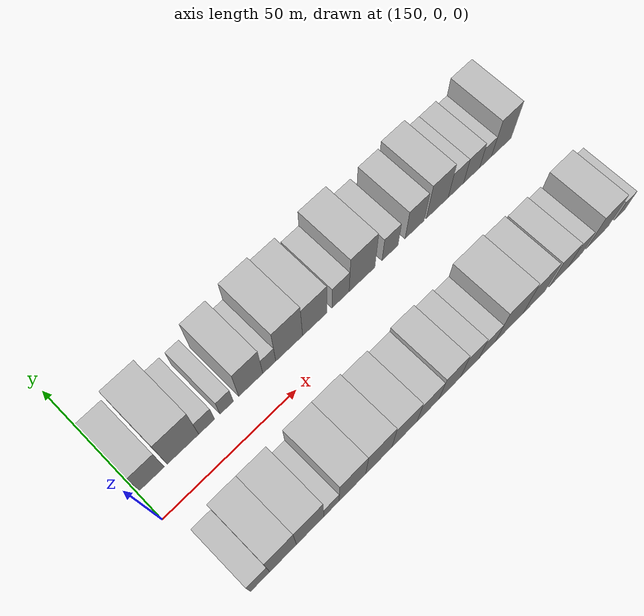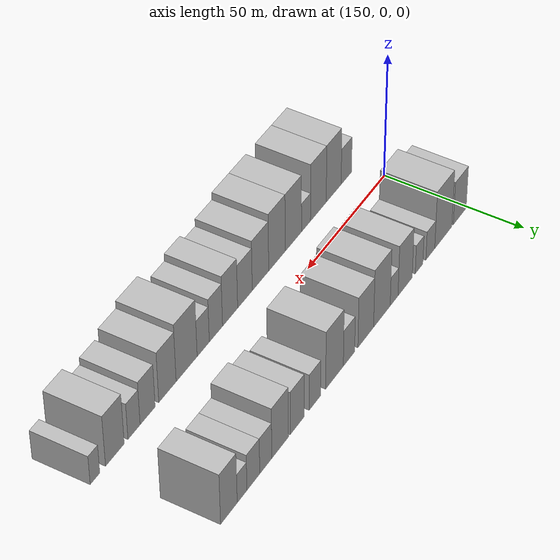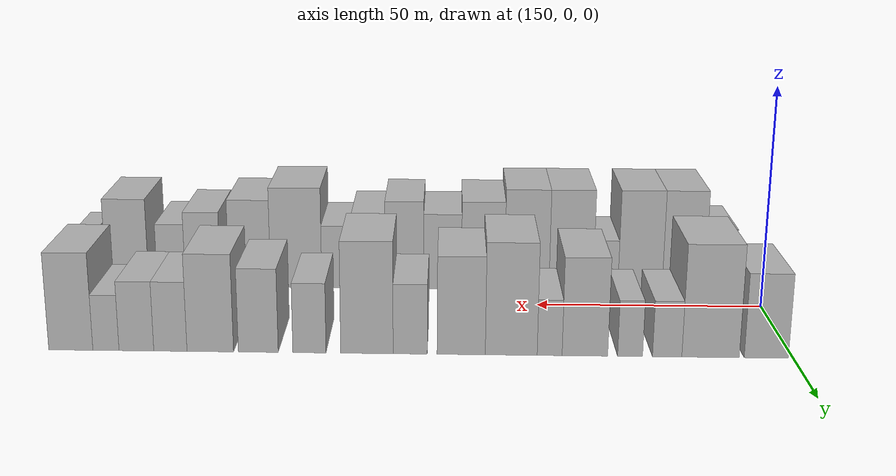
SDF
<sdf version="1.6">
 <world name="default">
  <model name="building_17">
   <static>1</static>
   <pose>155.3812 20.0000 0 0.000000 0.000000 1.570796</pose>
   <link name="link">
    <pose>0 0 9.00 0 0 0</pose>
    <collision name="collision"><geometry><box><size>20.0000 8.8951 18.0000</size></box></geometry></collision>
    <visual name="visual">
     <cast_shadows>0</cast_shadows>
     <geometry><box><size>20.0000 8.8951 18.0000</size></box></geometry>
     <material>
      <script>
       <uri>model://HANNAS_wall/materials/scripts</uri>
       <uri>model://HANNAS_wall/materials/textures</uri>
       <name>vrc/HANNAS_wall</name>
      </script>
     </material>
    </visual>
   </link>
  </model>
  <model name="building_18">
   <static>1</static>
   <pose>166.6293 20.0000 0 0.000000 0.000000 1.570796</pose>
   <link name="link">
    <pose>0 0 12.00 0 0 0</pose>
    <collision name="collision"><geometry><box><size>20.0000 11.6011 24.0000</size></box></geometry></collision>
    <visual name="visual">
     <cast_shadows>0</cast_shadows>
     <geometry><box><size>20.0000 11.6011 24.0000</size></box></geometry>
     <material>
      <script>
       <uri>model://HANNAS_wall/materials/scripts</uri>
       <uri>model://HANNAS_wall/materials/textures</uri>
       <name>vrc/HANNAS_wall</name>
      </script>
     </material>
    </visual>
   </link>
  </model>
  <model name="building_19">
   <static>1</static>
   <pose>175.3966 20.0000 0 0.000000 0.000000 1.570796</pose>
   <link name="link">
    <pose>0 0 6.00 0 0 0</pose>
    <collision name="collision"><geometry><box><size>20.0000 5.9334 12.0000</size></box></geometry></collision>
    <visual name="visual">
     <cast_shadows>0</cast_shadows>
     <geometry><box><size>20.0000 5.9334 12.0000</size></box></geometry>
     <material>
      <script>
       <uri>model://HANNAS_wall/materials/scripts</uri>
       <uri>model://HANNAS_wall/materials/textures</uri>
       <name>vrc/HANNAS_wall</name>
      </script>
     </material>
    </visual>
   </link>
  </model>
  <model name="building_20">
   <static>1</static>
   <pose>182.8956 20.0000 0 0.000000 0.000000 1.570796</pose>
   <link name="link">
    <pose>0 0 6.00 0 0 0</pose>
    <collision name="collision"><geometry><box><size>20.0000 5.0646 12.0000</size></box></geometry></collision>
    <visual name="visual">
     <cast_shadows>0</cast_shadows>
     <geometry><box><size>20.0000 5.0646 12.0000</size></box></geometry>
     <material>
      <script>
       <uri>model://HANNAS_wall/materials/scripts</uri>
       <uri>model://HANNAS_wall/materials/textures</uri>
       <name>vrc/HANNAS_wall</name>
      </script>
     </material>
    </visual>
   </link>
  </model>
  <model name="building_21">
   <static>1</static>
   <pose>192.0635 20.0000 0 0.000000 0.000000 1.570796</pose>
   <link name="link">
    <pose>0 0 10.50 0 0 0</pose>
    <collision name="collision"><geometry><box><size>20.0000 9.2713 21.0000</size></box></geometry></collision>
    <visual name="visual">
     <cast_shadows>0</cast_shadows>
     <geometry><box><size>20.0000 9.2713 21.0000</size></box></geometry>
     <material>
      <script>
       <uri>model://HANNAS_wall/materials/scripts</uri>
       <uri>model://HANNAS_wall/materials/textures</uri>
       <name>vrc/HANNAS_wall</name>
      </script>
     </material>
    </visual>
   </link>
  </model>
  <model name="building_22">
   <static>1</static>
   <pose>199.2287 20.0000 0 0.000000 0.000000 1.570796</pose>
   <link name="link">
    <pose>0 0 6.00 0 0 0</pose>
    <collision name="collision"><geometry><box><size>20.0000 5.0590 12.0000</size></box></geometry></collision>
    <visual name="visual">
     <cast_shadows>0</cast_shadows>
     <geometry><box><size>20.0000 5.0590 12.0000</size></box></geometry>
     <material>
      <script>
       <uri>model://HANNAS_wall/materials/scripts</uri>
       <uri>model://HANNAS_wall/materials/textures</uri>
       <name>vrc/HANNAS_wall</name>
      </script>
     </material>
    </visual>
   </link>
  </model>
  <model name="building_23">
   <static>1</static>
   <pose>207.0410 20.0000 0 0.000000 0.000000 1.570796</pose>
   <link name="link">
    <pose>0 0 12.00 0 0 0</pose>
    <collision name="collision"><geometry><box><size>20.0000 10.5656 24.0000</size></box></geometry></collision>
    <visual name="visual">
     <cast_shadows>0</cast_shadows>
     <geometry><box><size>20.0000 10.5656 24.0000</size></box></geometry>
     <material>
      <script>
       <uri>model://HANNAS_wall/materials/scripts</uri>
       <uri>model://HANNAS_wall/materials/textures</uri>
       <name>vrc/HANNAS_wall</name>
      </script>
     </material>
    </visual>
   </link>
  </model>
  <model name="building_24">
   <static>1</static>
   <pose>217.2430 20.0000 0 0.000000 0.000000 1.570796</pose>
   <link name="link">
    <pose>0 0 10.50 0 0 0</pose>
    <collision name="collision"><geometry><box><size>20.0000 9.8382 21.0000</size></box></geometry></collision>
    <visual name="visual">
     <cast_shadows>0</cast_shadows>
     <geometry><box><size>20.0000 9.8382 21.0000</size></box></geometry>
     <material>
      <script>
       <uri>model://HANNAS_wall/materials/scripts</uri>
       <uri>model://HANNAS_wall/materials/textures</uri>
       <name>vrc/HANNAS_wall</name>
      </script>
     </material>
    </visual>
   </link>
  </model>
  <model name="building_25">
   <static>1</static>
   <pose>227.6580 20.0000 0 0.000000 0.000000 1.570796</pose>
   <link name="link">
    <pose>0 0 7.50 0 0 0</pose>
    <collision name="collision"><geometry><box><size>20.0000 6.9918 15.0000</size></box></geometry></collision>
    <visual name="visual">
     <cast_shadows>0</cast_shadows>
     <geometry><box><size>20.0000 6.9918 15.0000</size></box></geometry>
     <material>
      <script>
       <uri>model://HANNAS_wall/materials/scripts</uri>
       <uri>model://HANNAS_wall/materials/textures</uri>
       <name>vrc/HANNAS_wall</name>
      </script>
     </material>
    </visual>
   </link>
  </model>
  <model name="building_26">
   <static>1</static>
   <pose>236.5223 20.0000 0 0.000000 0.000000 1.570796</pose>
   <link name="link">
    <pose>0 0 12.00 0 0 0</pose>
    <collision name="collision"><geometry><box><size>20.0000 10.7368 24.0000</size></box></geometry></collision>
    <visual name="visual">
     <cast_shadows>0</cast_shadows>
     <geometry><box><size>20.0000 10.7368 24.0000</size></box></geometry>
     <material>
      <script>
       <uri>model://HANNAS_wall/materials/scripts</uri>
       <uri>model://HANNAS_wall/materials/textures</uri>
       <name>vrc/HANNAS_wall</name>
      </script>
     </material>
    </visual>
   </link>
  </model>
  <model name="building_27">
   <static>1</static>
   <pose>248.2994 20.0000 0 0.000000 0.000000 1.570796</pose>
   <link name="link">
    <pose>0 0 7.50 0 0 0</pose>
    <collision name="collision"><geometry><box><size>20.0000 6.8175 15.0000</size></box></geometry></collision>
    <visual name="visual">
     <cast_shadows>0</cast_shadows>
     <geometry><box><size>20.0000 6.8175 15.0000</size></box></geometry>
     <material>
      <script>
       <uri>model://HANNAS_wall/materials/scripts</uri>
       <uri>model://HANNAS_wall/materials/textures</uri>
       <name>vrc/HANNAS_wall</name>
      </script>
     </material>
    </visual>
   </link>
  </model>
  <model name="building_28">
   <static>1</static>
   <pose>258.8060 20.0000 0 0.000000 0.000000 1.570796</pose>
   <link name="link">
    <pose>0 0 9.00 0 0 0</pose>
    <collision name="collision"><geometry><box><size>20.0000 8.1957 18.0000</size></box></geometry></collision>
    <visual name="visual">
     <cast_shadows>0</cast_shadows>
     <geometry><box><size>20.0000 8.1957 18.0000</size></box></geometry>
     <material>
      <script>
       <uri>model://HANNAS_wall/materials/scripts</uri>
       <uri>model://HANNAS_wall/materials/textures</uri>
       <name>vrc/HANNAS_wall</name>
      </script>
     </material>
    </visual>
   </link>
  </model>
  <model name="building_29">
   <static>1</static>
   <pose>268.7011 20.0000 0 0.000000 0.000000 1.570796</pose>
   <link name="link">
    <pose>0 0 10.50 0 0 0</pose>
    <collision name="collision"><geometry><box><size>20.0000 9.5946 21.0000</size></box></geometry></collision>
    <visual name="visual">
     <cast_shadows>0</cast_shadows>
     <geometry><box><size>20.0000 9.5946 21.0000</size></box></geometry>
     <material>
      <script>
       <uri>model://HANNAS_wall/materials/scripts</uri>
       <uri>model://HANNAS_wall/materials/textures</uri>
       <name>vrc/HANNAS_wall</name>
      </script>
     </material>
    </visual>
   </link>
  </model>
  <model name="building_30">
   <static>1</static>
   <pose>276.9308 20.0000 0 0.000000 0.000000 1.570796</pose>
   <link name="link">
    <pose>0 0 7.50 0 0 0</pose>
    <collision name="collision"><geometry><box><size>20.0000 6.8648 15.0000</size></box></geometry></collision>
    <visual name="visual">
     <cast_shadows>0</cast_shadows>
     <geometry><box><size>20.0000 6.8648 15.0000</size></box></geometry>
     <material>
      <script>
       <uri>model://HANNAS_wall/materials/scripts</uri>
       <uri>model://HANNAS_wall/materials/textures</uri>
       <name>vrc/HANNAS_wall</name>
      </script>
     </material>
    </visual>
   </link>
  </model>
  <model name="building_31">
   <static>1</static>
   <pose>283.9594 20.0000 0 0.000000 0.000000 1.570796</pose>
   <link name="link">
    <pose>0 0 7.50 0 0 0</pose>
    <collision name="collision"><geometry><box><size>20.0000 7.1924 15.0000</size></box></geometry></collision>
    <visual name="visual">
     <cast_shadows>0</cast_shadows>
     <geometry><box><size>20.0000 7.1924 15.0000</size></box></geometry>
     <material>
      <script>
       <uri>model://HANNAS_wall/materials/scripts</uri>
       <uri>model://HANNAS_wall/materials/textures</uri>
       <name>vrc/HANNAS_wall</name>
      </script>
     </material>
    </visual>
   </link>
  </model>
  <model name="building_32">
   <static>1</static>
   <pose>290.2627 20.0000 0 0.000000 0.000000 1.570796</pose>
   <link name="link">
    <pose>0 0 6.00 0 0 0</pose>
    <collision name="collision"><geometry><box><size>20.0000 5.4142 12.0000</size></box></geometry></collision>
    <visual name="visual">
     <cast_shadows>0</cast_shadows>
     <geometry><box><size>20.0000 5.4142 12.0000</size></box></geometry>
     <material>
      <script>
       <uri>model://HANNAS_wall/materials/scripts</uri>
       <uri>model://HANNAS_wall/materials/textures</uri>
       <name>vrc/HANNAS_wall</name>
      </script>
     </material>
    </visual>
   </link>
  </model>
  <model name="building_33">
   <static>1</static>
   <pose>297.5388 20.0000 0 0.000000 0.000000 1.570796</pose>
   <link name="link">
    <pose>0 0 10.50 0 0 0</pose>
    <collision name="collision"><geometry><box><size>20.0000 9.1381 21.0000</size></box></geometry></collision>
    <visual name="visual">
     <cast_shadows>0</cast_shadows>
     <geometry><box><size>20.0000 9.1381 21.0000</size></box></geometry>
     <material>
      <script>
       <uri>model://HANNAS_wall/materials/scripts</uri>
       <uri>model://HANNAS_wall/materials/textures</uri>
       <name>vrc/HANNAS_wall</name>
      </script>
     </material>
    </visual>
   </link>
  </model>
  <model name="building_49">
   <static>1</static>
   <pose>157.3976 -20.0000 0 0.000000 0.000000 1.570796</pose>
   <link name="link">
    <pose>0 0 7.50 0 0 0</pose>
    <collision name="collision"><geometry><box><size>20.0000 6.8991 15.0000</size></box></geometry></collision>
    <visual name="visual">
     <cast_shadows>0</cast_shadows>
     <geometry><box><size>20.0000 6.8991 15.0000</size></box></geometry>
     <material>
      <script>
       <uri>model://HANNAS_wall/materials/scripts</uri>
       <uri>model://HANNAS_wall/materials/textures</uri>
       <name>vrc/HANNAS_wall</name>
      </script>
     </material>
    </visual>
   </link>
  </model>
  <model name="building_50">
   <static>1</static>
   <pose>165.7211 -20.0000 0 0.000000 0.000000 1.570796</pose>
   <link name="link">
    <pose>0 0 12.00 0 0 0</pose>
    <collision name="collision"><geometry><box><size>20.0000 9.7480 24.0000</size></box></geometry></collision>
    <visual name="visual">
     <cast_shadows>0</cast_shadows>
     <geometry><box><size>20.0000 9.7480 24.0000</size></box></geometry>
     <material>
      <script>
       <uri>model://HANNAS_wall/materials/scripts</uri>
       <uri>model://HANNAS_wall/materials/textures</uri>
       <name>vrc/HANNAS_wall</name>
      </script>
     </material>
    </visual>
   </link>
  </model>
  <model name="building_51">
   <static>1</static>
   <pose>175.6865 -20.0000 0 0.000000 0.000000 1.570796</pose>
   <link name="link">
    <pose>0 0 12.00 0 0 0</pose>
    <collision name="collision"><geometry><box><size>20.0000 10.1828 24.0000</size></box></geometry></collision>
    <visual name="visual">
     <cast_shadows>0</cast_shadows>
     <geometry><box><size>20.0000 10.1828 24.0000</size></box></geometry>
     <material>
      <script>
       <uri>model://HANNAS_wall/materials/scripts</uri>
       <uri>model://HANNAS_wall/materials/textures</uri>
       <name>vrc/HANNAS_wall</name>
      </script>
     </material>
    </visual>
   </link>
  </model>
  <model name="building_52">
   <static>1</static>
   <pose>183.6340 -20.0000 0 0.000000 0.000000 1.570796</pose>
   <link name="link">
    <pose>0 0 6.00 0 0 0</pose>
    <collision name="collision"><geometry><box><size>20.0000 5.7124 12.0000</size></box></geometry></collision>
    <visual name="visual">
     <cast_shadows>0</cast_shadows>
     <geometry><box><size>20.0000 5.7124 12.0000</size></box></geometry>
     <material>
      <script>
       <uri>model://HANNAS_wall/materials/scripts</uri>
       <uri>model://HANNAS_wall/materials/textures</uri>
       <name>vrc/HANNAS_wall</name>
      </script>
     </material>
    </visual>
   </link>
  </model>
  <model name="building_53">
   <static>1</static>
   <pose>191.5759 -20.0000 0 0.000000 0.000000 1.570796</pose>
   <link name="link">
    <pose>0 0 12.00 0 0 0</pose>
    <collision name="collision"><geometry><box><size>20.0000 10.1714 24.0000</size></box></geometry></collision>
    <visual name="visual">
     <cast_shadows>0</cast_shadows>
     <geometry><box><size>20.0000 10.1714 24.0000</size></box></geometry>
     <material>
      <script>
       <uri>model://HANNAS_wall/materials/scripts</uri>
       <uri>model://HANNAS_wall/materials/textures</uri>
       <name>vrc/HANNAS_wall</name>
      </script>
     </material>
    </visual>
   </link>
  </model>
  <model name="building_54">
   <static>1</static>
   <pose>201.7952 -20.0000 0 0.000000 0.000000 1.570796</pose>
   <link name="link">
    <pose>0 0 12.00 0 0 0</pose>
    <collision name="collision"><geometry><box><size>20.0000 10.2671 24.0000</size></box></geometry></collision>
    <visual name="visual">
     <cast_shadows>0</cast_shadows>
     <geometry><box><size>20.0000 10.2671 24.0000</size></box></geometry>
     <material>
      <script>
       <uri>model://HANNAS_wall/materials/scripts</uri>
       <uri>model://HANNAS_wall/materials/textures</uri>
       <name>vrc/HANNAS_wall</name>
      </script>
     </material>
    </visual>
   </link>
  </model>
  <model name="building_55">
   <static>1</static>
   <pose>211.9346 -20.0000 0 0.000000 0.000000 1.570796</pose>
   <link name="link">
    <pose>0 0 10.50 0 0 0</pose>
    <collision name="collision"><geometry><box><size>20.0000 10.0118 21.0000</size></box></geometry></collision>
    <visual name="visual">
     <cast_shadows>0</cast_shadows>
     <geometry><box><size>20.0000 10.0118 21.0000</size></box></geometry>
     <material>
      <script>
       <uri>model://HANNAS_wall/materials/scripts</uri>
       <uri>model://HANNAS_wall/materials/textures</uri>
       <name>vrc/HANNAS_wall</name>
      </script>
     </material>
    </visual>
   </link>
  </model>
  <model name="building_56">
   <static>1</static>
   <pose>221.3277 -20.0000 0 0.000000 0.000000 1.570796</pose>
   <link name="link">
    <pose>0 0 9.00 0 0 0</pose>
    <collision name="collision"><geometry><box><size>20.0000 8.7744 18.0000</size></box></geometry></collision>
    <visual name="visual">
     <cast_shadows>0</cast_shadows>
     <geometry><box><size>20.0000 8.7744 18.0000</size></box></geometry>
     <material>
      <script>
       <uri>model://HANNAS_wall/materials/scripts</uri>
       <uri>model://HANNAS_wall/materials/textures</uri>
       <name>vrc/HANNAS_wall</name>
      </script>
     </material>
    </visual>
   </link>
  </model>
  <model name="building_57">
   <static>1</static>
   <pose>230.1869 -20.0000 0 0.000000 0.000000 1.570796</pose>
   <link name="link">
    <pose>0 0 10.50 0 0 0</pose>
    <collision name="collision"><geometry><box><size>20.0000 8.9441 21.0000</size></box></geometry></collision>
    <visual name="visual">
     <cast_shadows>0</cast_shadows>
     <geometry><box><size>20.0000 8.9441 21.0000</size></box></geometry>
     <material>
      <script>
       <uri>model://HANNAS_wall/materials/scripts</uri>
       <uri>model://HANNAS_wall/materials/textures</uri>
       <name>vrc/HANNAS_wall</name>
      </script>
     </material>
    </visual>
   </link>
  </model>
  <model name="building_58">
   <static>1</static>
   <pose>238.5222 -20.0000 0 0.000000 0.000000 1.570796</pose>
   <link name="link">
    <pose>0 0 9.00 0 0 0</pose>
    <collision name="collision"><geometry><box><size>20.0000 7.7264 18.0000</size></box></geometry></collision>
    <visual name="visual">
     <cast_shadows>0</cast_shadows>
     <geometry><box><size>20.0000 7.7264 18.0000</size></box></geometry>
     <material>
      <script>
       <uri>model://HANNAS_wall/materials/scripts</uri>
       <uri>model://HANNAS_wall/materials/textures</uri>
       <name>vrc/HANNAS_wall</name>
      </script>
     </material>
    </visual>
   </link>
  </model>
  <model name="building_59">
   <static>1</static>
   <pose>245.8957 -20.0000 0 0.000000 0.000000 1.570796</pose>
   <link name="link">
    <pose>0 0 7.50 0 0 0</pose>
    <collision name="collision"><geometry><box><size>20.0000 7.0207 15.0000</size></box></geometry></collision>
    <visual name="visual">
     <cast_shadows>0</cast_shadows>
     <geometry><box><size>20.0000 7.0207 15.0000</size></box></geometry>
     <material>
      <script>
       <uri>model://HANNAS_wall/materials/scripts</uri>
       <uri>model://HANNAS_wall/materials/textures</uri>
       <name>vrc/HANNAS_wall</name>
      </script>
     </material>
    </visual>
   </link>
  </model>
  <model name="building_60">
   <static>1</static>
   <pose>255.3797 -20.0000 0 0.000000 0.000000 1.570796</pose>
   <link name="link">
    <pose>0 0 12.00 0 0 0</pose>
    <collision name="collision"><geometry><box><size>20.0000 11.9472 24.0000</size></box></geometry></collision>
    <visual name="visual">
     <cast_shadows>0</cast_shadows>
     <geometry><box><size>20.0000 11.9472 24.0000</size></box></geometry>
     <material>
      <script>
       <uri>model://HANNAS_wall/materials/scripts</uri>
       <uri>model://HANNAS_wall/materials/textures</uri>
       <name>vrc/HANNAS_wall</name>
      </script>
     </material>
    </visual>
   </link>
  </model>
  <model name="building_61">
   <static>1</static>
   <pose>266.2011 -20.0000 0 0.000000 0.000000 1.570796</pose>
   <link name="link">
    <pose>0 0 10.50 0 0 0</pose>
    <collision name="collision"><geometry><box><size>20.0000 9.6957 21.0000</size></box></geometry></collision>
    <visual name="visual">
     <cast_shadows>0</cast_shadows>
     <geometry><box><size>20.0000 9.6957 21.0000</size></box></geometry>
     <material>
      <script>
       <uri>model://HANNAS_wall/materials/scripts</uri>
       <uri>model://HANNAS_wall/materials/textures</uri>
       <name>vrc/HANNAS_wall</name>
      </script>
     </material>
    </visual>
   </link>
  </model>
  <model name="building_62">
   <static>1</static>
   <pose>277.1738 -20.0000 0 0.000000 0.000000 1.570796</pose>
   <link name="link">
    <pose>0 0 9.00 0 0 0</pose>
    <collision name="collision"><geometry><box><size>20.0000 8.2496 18.0000</size></box></geometry></collision>
    <visual name="visual">
     <cast_shadows>0</cast_shadows>
     <geometry><box><size>20.0000 8.2496 18.0000</size></box></geometry>
     <material>
      <script>
       <uri>model://HANNAS_wall/materials/scripts</uri>
       <uri>model://HANNAS_wall/materials/textures</uri>
       <name>vrc/HANNAS_wall</name>
      </script>
     </material>
    </visual>
   </link>
  </model>
  <model name="building_63">
   <static>1</static>
   <pose>284.5901 -20.0000 0 0.000000 0.000000 1.570796</pose>
   <link name="link">
    <pose>0 0 7.50 0 0 0</pose>
    <collision name="collision"><geometry><box><size>20.0000 6.5830 15.0000</size></box></geometry></collision>
    <visual name="visual">
     <cast_shadows>0</cast_shadows>
     <geometry><box><size>20.0000 6.5830 15.0000</size></box></geometry>
     <material>
      <script>
       <uri>model://HANNAS_wall/materials/scripts</uri>
       <uri>model://HANNAS_wall/materials/textures</uri>
       <name>vrc/HANNAS_wall</name>
      </script>
     </material>
    </visual>
   </link>
  </model>
  <model name="building_64">
   <static>1</static>
   <pose>294.8608 -20.0000 0 0.000000 0.000000 1.570796</pose>
   <link name="link">
    <pose>0 0 10.50 0 0 0</pose>
    <collision name="collision"><geometry><box><size>20.0000 9.9583 21.0000</size></box></geometry></collision>
    <visual name="visual">
     <cast_shadows>0</cast_shadows>
     <geometry><box><size>20.0000 9.9583 21.0000</size></box></geometry>
     <material>
      <script>
       <uri>model://HANNAS_wall/materials/scripts</uri>
       <uri>model://HANNAS_wall/materials/textures</uri>
       <name>vrc/HANNAS_wall</name>
      </script>
     </material>
    </visual>
   </link>
  </model>
  <model name="building_65">
   <static>1</static>
   <pose>305.3638 -20.0000 0 0.000000 0.000000 1.570796</pose>
   <link name="link">
    <pose>0 0 6.00 0 0 0</pose>
    <collision name="collision"><geometry><box><size>20.0000 5.0479 12.0000</size></box></geometry></collision>
    <visual name="visual">
     <cast_shadows>0</cast_shadows>
     <geometry><box><size>20.0000 5.0479 12.0000</size></box></geometry>
     <material>
      <script>
       <uri>model://HANNAS_wall/materials/scripts</uri>
       <uri>model://HANNAS_wall/materials/textures</uri>
       <name>vrc/HANNAS_wall</name>
      </script>
     </material>
    </visual>
   </link>
  </model>
 </world>
</sdf>
